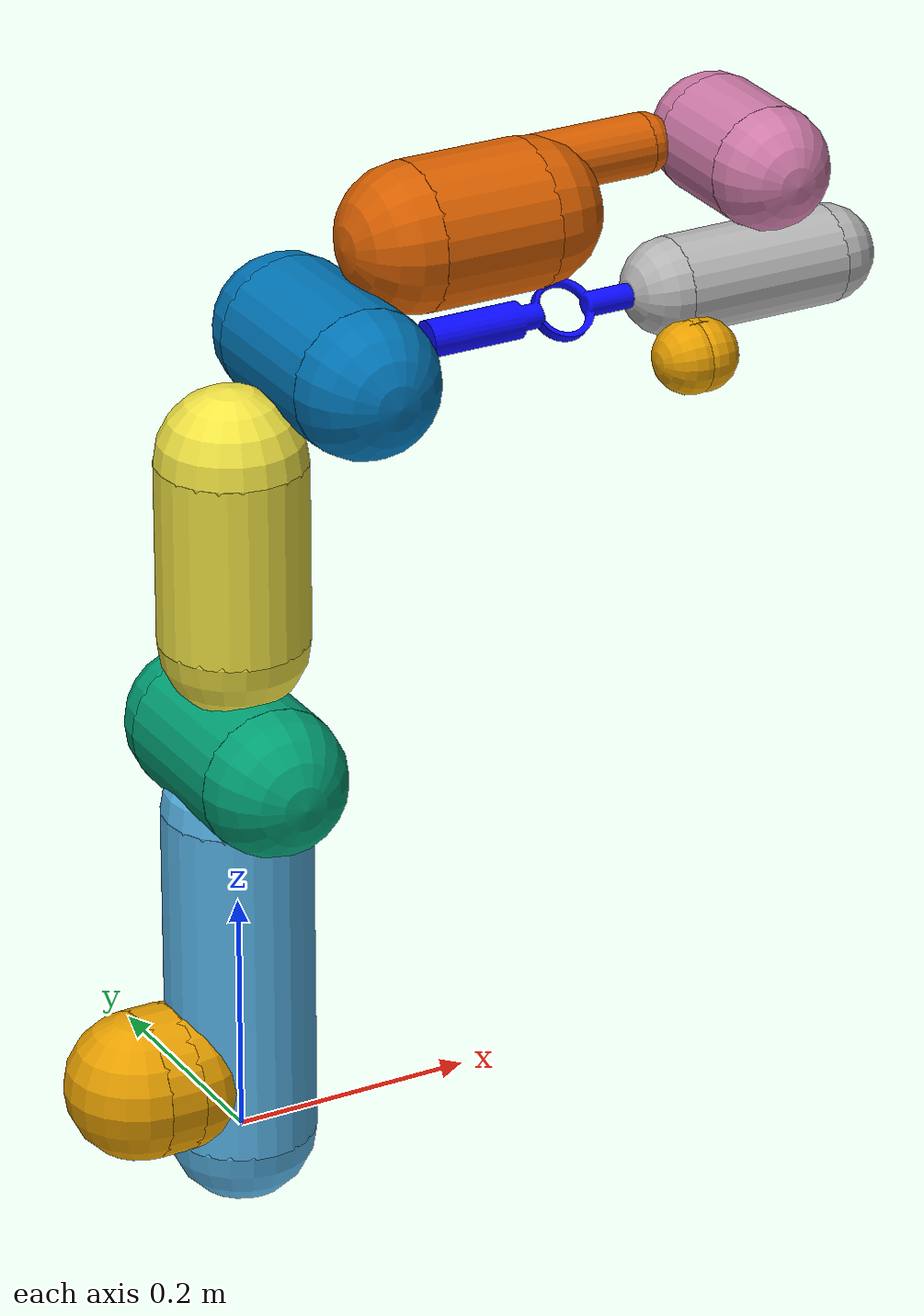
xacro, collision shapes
<?xml version="1.0" encoding="utf-8"?>
<robot xmlns:xacro="http://www.ros.org/wiki/xacro" name="panda">
  <xacro:arg name="gazebo_plugin" default="" />
  <xacro:include filename="$(find franka_description)/robots/panda_arm.xacro"/>
  <xacro:include filename="$(find franka_description)/robots/handle.xacro"/>
  <xacro:panda_arm gazebo_plugin="$(arg gazebo_plugin)"/>
  <xacro:handle ns="panda" rpy="0 0 ${-pi/4}" connected_to="panda_link8"/>
</robot>

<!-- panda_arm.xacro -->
<robot xmlns:xacro="http://www.ros.org/wiki/xacro" name="panda">
  <!-- safety_distance: Minimum safety distance in [m] by which the collision volumes are expanded and which is enforced during robot motions -->
  <!-- arm_id: Namespace of the panda arm. Serves to differentiate between arms in case of multiple instances. -->
  <xacro:macro name="panda_arm" params="arm_id:='panda' description_pkg:='franka_description' connected_to:='' xyz:='0 0 0' rpy:='0 0 0' safety_distance:=0">
    <xacro:unless value="${not connected_to}">
      <joint name="${arm_id}_joint_${connected_to}" type="fixed">
        <parent link="${connected_to}"/>
        <child link="${arm_id}_link0"/>
        <origin rpy="${rpy}" xyz="${xyz}"/>
      </joint>
    </xacro:unless>
    <link name="${arm_id}_link0">
      <visual>
        <geometry>
          <mesh filename="package://${description_pkg}/meshes/visual/link0.dae"/>
        </geometry>
      </visual>
      <collision>
        <origin xyz="-0.075 0 0.06" rpy="0 ${pi/2} 0"/>
        <geometry>
          <cylinder radius="${0.06+safety_distance}" length="0.03" />
        </geometry>
      </collision>
      <collision>
        <origin xyz="-0.06 0 0.06" rpy="0 0 0"/>
        <geometry>
          <sphere radius="${0.06+safety_distance}" />
        </geometry>
      </collision>
      <collision>
        <origin xyz="-0.09 0 0.06" rpy="0 0 0"/>
        <geometry>
          <sphere radius="${0.06+safety_distance}" />
        </geometry>
      </collision>
    </link>
    <link name="${arm_id}_link1">
      <visual>
        <geometry>
          <mesh filename="package://${description_pkg}/meshes/visual/link1.dae"/>
        </geometry>
      </visual>
      <collision>
        <origin xyz="0 0 -0.1915" rpy="0 0 0"/>
        <geometry>
          <cylinder radius="${0.06+safety_distance}" length="0.2830" />
        </geometry>
      </collision>
      <collision>
        <origin xyz="0 0 -0.333" rpy="0 0 0"/>
        <geometry>
          <sphere radius="${0.06+safety_distance}" />
        </geometry>
      </collision>
      <collision>
        <origin xyz="0 0 -0.05" rpy="0 0 0"/>
        <geometry>
          <sphere radius="${0.06+safety_distance}" />
        </geometry>
      </collision>
    </link>
    <joint name="${arm_id}_joint1" type="revolute">
      <safety_controller k_position="100.0" k_velocity="40.0" soft_lower_limit="-2.8973" soft_upper_limit="2.8973"/>
      <origin rpy="0 0 0" xyz="0 0 0.333"/>
      <parent link="${arm_id}_link0"/>
      <child link="${arm_id}_link1"/>
      <axis xyz="0 0 1"/>
      <limit effort="87" lower="-2.8973" upper="2.8973" velocity="2.1750"/>
    </joint>
    <link name="${arm_id}_link2">
      <visual>
        <geometry>
          <mesh filename="package://${description_pkg}/meshes/visual/link2.dae"/>
        </geometry>
      </visual>
      <collision>
        <origin xyz="0 0 0" rpy="0 0 0"/>
        <geometry>
          <cylinder radius="${0.06+safety_distance}" length="0.12" />
        </geometry>
      </collision>
      <collision>
        <origin xyz="0 0 -0.06" rpy="0 0 0"/>
        <geometry>
          <sphere radius="${0.06+safety_distance}" />
        </geometry>
      </collision>
      <collision>
        <origin xyz="0 0 0.06" rpy="0 0 0"/>
        <geometry>
          <sphere radius="${0.06+safety_distance}" />
        </geometry>
      </collision>
    </link>
    <joint name="${arm_id}_joint2" type="revolute">
      <safety_controller k_position="100.0" k_velocity="40.0" soft_lower_limit="-1.7628" soft_upper_limit="1.7628"/>
      <origin rpy="${-pi/2} 0 0" xyz="0 0 0"/>
      <parent link="${arm_id}_link1"/>
      <child link="${arm_id}_link2"/>
      <axis xyz="0 0 1"/>
      <limit effort="87" lower="-1.7628" upper="1.7628" velocity="2.1750"/>
    </joint>
    <link name="${arm_id}_link3">
      <visual>
        <geometry>
          <mesh filename="package://${description_pkg}/meshes/visual/link3.dae"/>
        </geometry>
      </visual>
      <collision>
        <origin xyz="0 0 -0.145" rpy="0 0 0"/>
        <geometry>
          <cylinder radius="${0.06+safety_distance}" length="0.15" />
        </geometry>
      </collision>
      <collision>
        <origin xyz="0 0 -0.22" rpy="0 0 0"/>
        <geometry>
          <sphere radius="${0.06+safety_distance}" />
        </geometry>
      </collision>
      <collision>
        <origin xyz="0 0 -0.07" rpy="0 0 0"/>
        <geometry>
          <sphere radius="${0.06+safety_distance}" />
        </geometry>
      </collision>
    </link>
    <joint name="${arm_id}_joint3" type="revolute">
      <safety_controller k_position="100.0" k_velocity="40.0" soft_lower_limit="-2.8973" soft_upper_limit="2.8973"/>
      <origin rpy="${pi/2} 0 0" xyz="0 -0.316 0"/>
      <parent link="${arm_id}_link2"/>
      <child link="${arm_id}_link3"/>
      <axis xyz="0 0 1"/>
      <limit effort="87" lower="-2.8973" upper="2.8973" velocity="2.1750"/>
    </joint>
    <link name="${arm_id}_link4">
      <visual>
        <geometry>
          <mesh filename="package://${description_pkg}/meshes/visual/link4.dae"/>
        </geometry>
      </visual>
      <collision>
        <origin xyz="0 0 0" rpy="0 0 0"/>
        <geometry>
          <cylinder radius="${0.06+safety_distance}" length="0.12" />
        </geometry>
      </collision>
      <collision>
        <origin xyz="0 0 0.06" rpy="0 0 0"/>
        <geometry>
          <sphere radius="${0.06+safety_distance}" />
        </geometry>
      </collision>
      <collision>
        <origin xyz="0 0 -0.06" rpy="0 0 0"/>
        <geometry>
          <sphere radius="${0.06+safety_distance}" />
        </geometry>
      </collision>
    </link>
    <joint name="${arm_id}_joint4" type="revolute">
      <safety_controller k_position="100.0" k_velocity="40.0" soft_lower_limit="-3.0718" soft_upper_limit="-0.0698"/>
      <origin rpy="${pi/2} 0 0" xyz="0.0825 0 0"/>
      <parent link="${arm_id}_link3"/>
      <child link="${arm_id}_link4"/>
      <axis xyz="0 0 1"/>
      <limit effort="87" lower="-3.0718" upper="-0.0698" velocity="2.1750"/>
    </joint>
    <link name="${arm_id}_link5">
      <visual>
        <geometry>
          <mesh filename="package://${description_pkg}/meshes/visual/link5.dae"/>
        </geometry>
      </visual>
      <collision>
        <origin xyz="0 0 -0.26" rpy="0 0 0"/>
        <geometry>
          <cylinder radius="${0.06+safety_distance}" length="0.1" />
        </geometry>
      </collision>
      <collision>
        <origin xyz="0 0 -0.31" rpy="0 0 0"/>
        <geometry>
          <sphere radius="${0.06+safety_distance}" />
        </geometry>
      </collision>
      <collision>
        <origin xyz="0 0 -0.21" rpy="0 0 0"/>
        <geometry>
          <sphere radius="${0.06+safety_distance}" />
        </geometry>
      </collision>
      <collision>
        <origin xyz="0 0.08 -0.13" rpy="0 0 0"/>
        <geometry>
          <cylinder radius="${0.025+safety_distance}" length="0.14" />
        </geometry>
      </collision>
      <collision>
        <origin xyz="0 0.08 -0.06" rpy="0 0 0"/>
        <geometry>
          <sphere radius="${0.025+safety_distance}" />
        </geometry>
      </collision>
      <collision>
        <origin xyz="0 0.08 -0.20" rpy="0 0 0"/>
        <geometry>
          <sphere radius="${0.025+safety_distance}" />
        </geometry>
      </collision>

    </link>
    <joint name="${arm_id}_joint5" type="revolute">
      <safety_controller k_position="100.0" k_velocity="40.0" soft_lower_limit="-2.8973" soft_upper_limit="2.8973"/>
      <origin rpy="${-pi/2} 0 0" xyz="-0.0825 0.384 0"/>
      <parent link="${arm_id}_link4"/>
      <child link="${arm_id}_link5"/>
      <axis xyz="0 0 1"/>
      <limit effort="12" lower="-2.8973" upper="2.8973" velocity="2.6100"/>
    </joint>
    <link name="${arm_id}_link6">
      <visual>
        <geometry>
          <mesh filename="package://${description_pkg}/meshes/visual/link6.dae"/>
        </geometry>
      </visual>
      <collision>
        <origin xyz="0 0 -0.03" rpy="0 0 0"/>
        <geometry>
          <cylinder radius="${0.05+safety_distance}" length="0.08" />
        </geometry>
      </collision>
      <collision>
        <origin xyz="0 0 0.01" rpy="0 0 0"/>
        <geometry>
          <sphere radius="${0.05+safety_distance}" />
        </geometry>
      </collision>
      <collision>
        <origin xyz="0 0 -0.07" rpy="0 0 0"/>
        <geometry>
          <sphere radius="${0.05+safety_distance}" />
        </geometry>
      </collision>
    </link>
    <joint name="${arm_id}_joint6" type="revolute">
      <safety_controller k_position="100.0" k_velocity="40.0" soft_lower_limit="-0.0175" soft_upper_limit="3.7525"/>
      <origin rpy="${pi/2} 0 0" xyz="0 0 0"/>
      <parent link="${arm_id}_link5"/>
      <child link="${arm_id}_link6"/>
      <axis xyz="0 0 1"/>
      <limit effort="12" lower="-0.0175" upper="3.7525" velocity="2.6100"/>
    </joint>
    <link name="${arm_id}_link7">
      <visual>
        <geometry>
          <mesh filename="package://${description_pkg}/meshes/visual/link7.dae"/>
        </geometry>
      </visual>
      <collision>
        <origin xyz="0 0 0.01" rpy="0 0 0"/>
        <geometry>
          <cylinder radius="${0.04+safety_distance}" length="0.14" />
        </geometry>
      </collision>
      <collision>
        <origin xyz="0 0 0.08" rpy="0 0 0"/>
        <geometry>
          <sphere radius="${0.04+safety_distance}"  />
        </geometry>
      </collision>
      <collision>
        <origin xyz="0 0 -0.06" rpy="0 0 0"/>
        <geometry>
          <sphere radius="${0.04+safety_distance}"  />
        </geometry>
      </collision>
    </link>
    <joint name="${arm_id}_joint7" type="revolute">
      <safety_controller k_position="100.0" k_velocity="40.0" soft_lower_limit="-2.8973" soft_upper_limit="2.8973"/>
      <origin rpy="${pi/2} 0 0" xyz="0.088 0 0"/>
      <parent link="${arm_id}_link6"/>
      <child link="${arm_id}_link7"/>
      <axis xyz="0 0 1"/>
      <limit effort="12" lower="-2.8973" upper="2.8973" velocity="2.6100"/>
    </joint>
    <link name="${arm_id}_link8">
      <collision>
        <origin xyz="0.0424 0.0424 -0.0250" rpy="${pi} ${pi/2} ${pi/2}"/>
        <geometry>
          <cylinder radius="${0.03+safety_distance}"  length="0.01" />
        </geometry>
      </collision>
      <collision>
        <origin xyz="0.0424 0.0424 -0.02" rpy="0 0 0"/>
        <geometry>
          <sphere radius="${0.03+safety_distance}"  />
        </geometry>
      </collision>
      <collision>
        <origin xyz="0.0424 0.0424 -0.03" rpy="0 0 0"/>
        <geometry>
          <sphere radius="${0.03+safety_distance}"  />
        </geometry>
      </collision>
    </link>
    <joint name="${arm_id}_joint8" type="fixed">
      <origin rpy="0 0 0" xyz="0 0 0.107"/>
      <parent link="${arm_id}_link7"/>
      <child link="${arm_id}_link8"/>
    </joint>
  </xacro:macro>
</robot>

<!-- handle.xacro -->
<robot xmlns:xacro="http://www.ros.org/wiki/xacro" name="handle">
  <xacro:macro name="handle" params="connected_to:='' ns:='' rpy:='0 0 0' xyz:='0 0 0' ">
    <xacro:unless value="${connected_to == ''}">
      <joint name="${ns}_handle_joint" type="fixed">
        <parent link="${connected_to}"/>
        <child link="${ns}_handle"/>
        <origin xyz="${xyz}" rpy="${rpy}"/>
      </joint>
    </xacro:unless>
    <link name="${ns}_handle">
      <visual>
        <origin xyz="0 0 0" rpy="0 0 0"/>
        <geometry>
          <mesh filename="package://franka_description/meshes/wireloop/sample_handle.stl"/>
        </geometry>
        <material name="handle_color">
		      <color rgba="${10/255} ${10/255} ${255/255} 1.0"/>
      	</material>
      </visual>
      <collision>
        <origin xyz="0 0 0" rpy="0 0 0"/>
        <geometry>
          <mesh filename="package://franka_description/meshes/wireloop/sample_handle.stl"/>
        </geometry>
      </collision>
    </link>
    <link name="${ns}_handleFT">
      <inertial>
        <origin xyz="0 0 0" rpy="0 0 0"/>
        <mass value="0.0001"/>
        <inertia ixx="0.000015" ixy="0.0" ixz="0.0" iyy="0.000005" iyz="-0.00004" izz="0.000012"/>
      </inertial>
    </link>
    <joint name="${ns}_handlejointFT" type="fixed">
      <origin rpy="0 0 0" xyz="0 0 0.07"/>
      <parent link="${ns}_handle"/>
      <child link="${ns}_handleFT"/>
      <axis xyz="0 0 0"/>
    </joint>

  </xacro:macro>
</robot>
